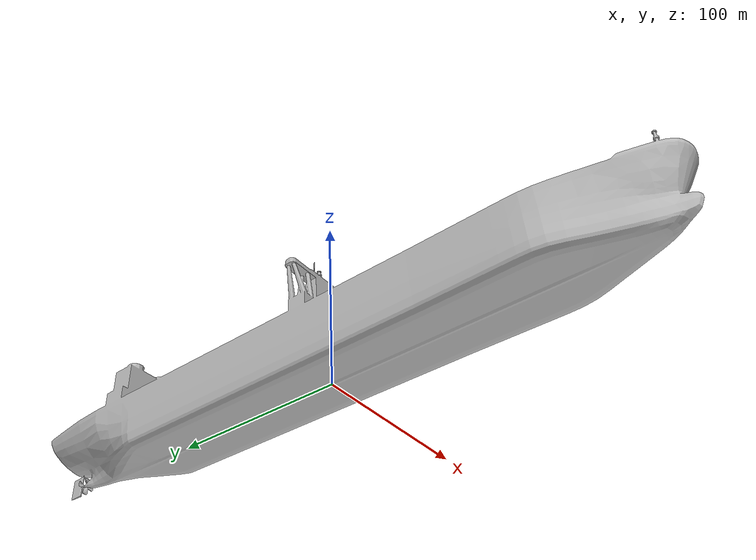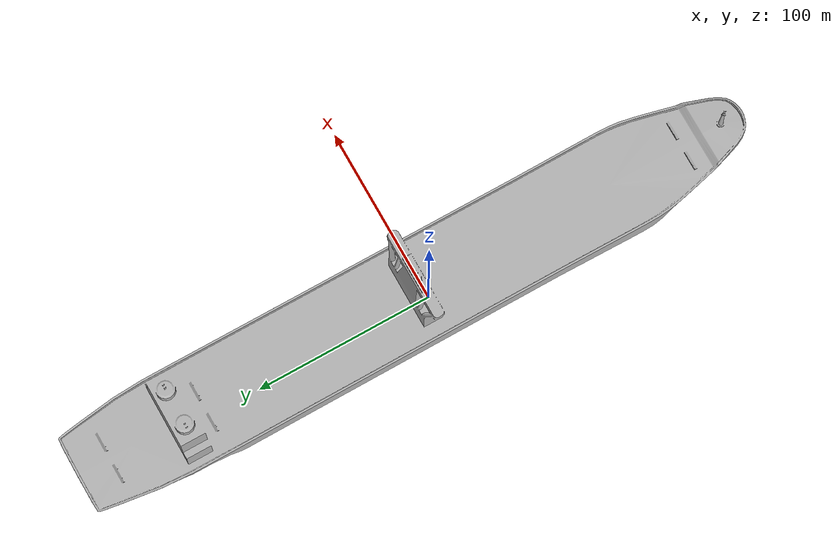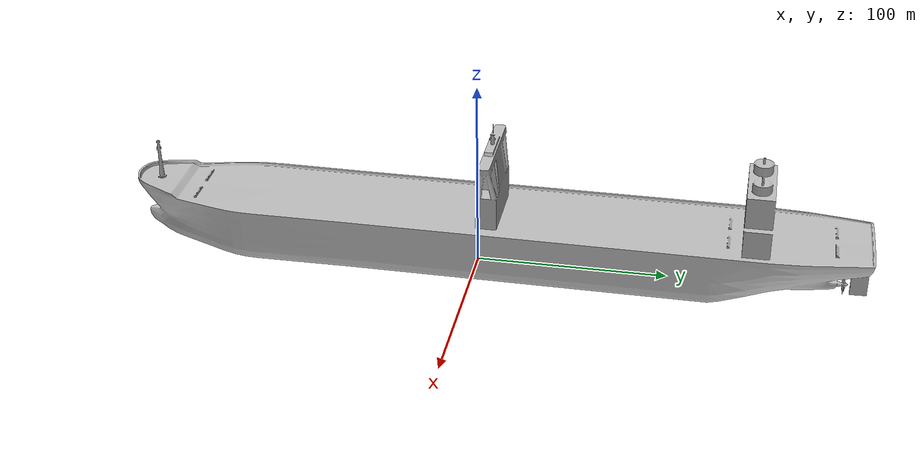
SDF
<?xml version="1.0"?>
<sdf version="1.6">
  <model name="everorange">
    <!-- Body -->
    <link name="base_link">
      <inertial>
        <mass>147.8671</mass>
        <inertia>
          <ixx>3.000000</ixx>
          <ixy>0</ixy>
          <ixz>0</ixz>
          <iyy>41.980233</iyy>
          <iyz>0</iyz>
          <izz>41.980233</izz>
        </inertia>
      </inertial>

      <collision name="main_body_buoyancy">
        <geometry>
          <box>
            <size>2 0.3 0.246445166667</size>
          </box>
        </geometry>
      </collision>

      <visual name="visual">
        <geometry>
          <mesh>
            <uri>meshes/ShipModel.dae</uri>
          </mesh>
        </geometry>
	<pose>0 0 0 1.57 0 0</pose>
      </visual>
    </link>
  </model>
</sdf>
